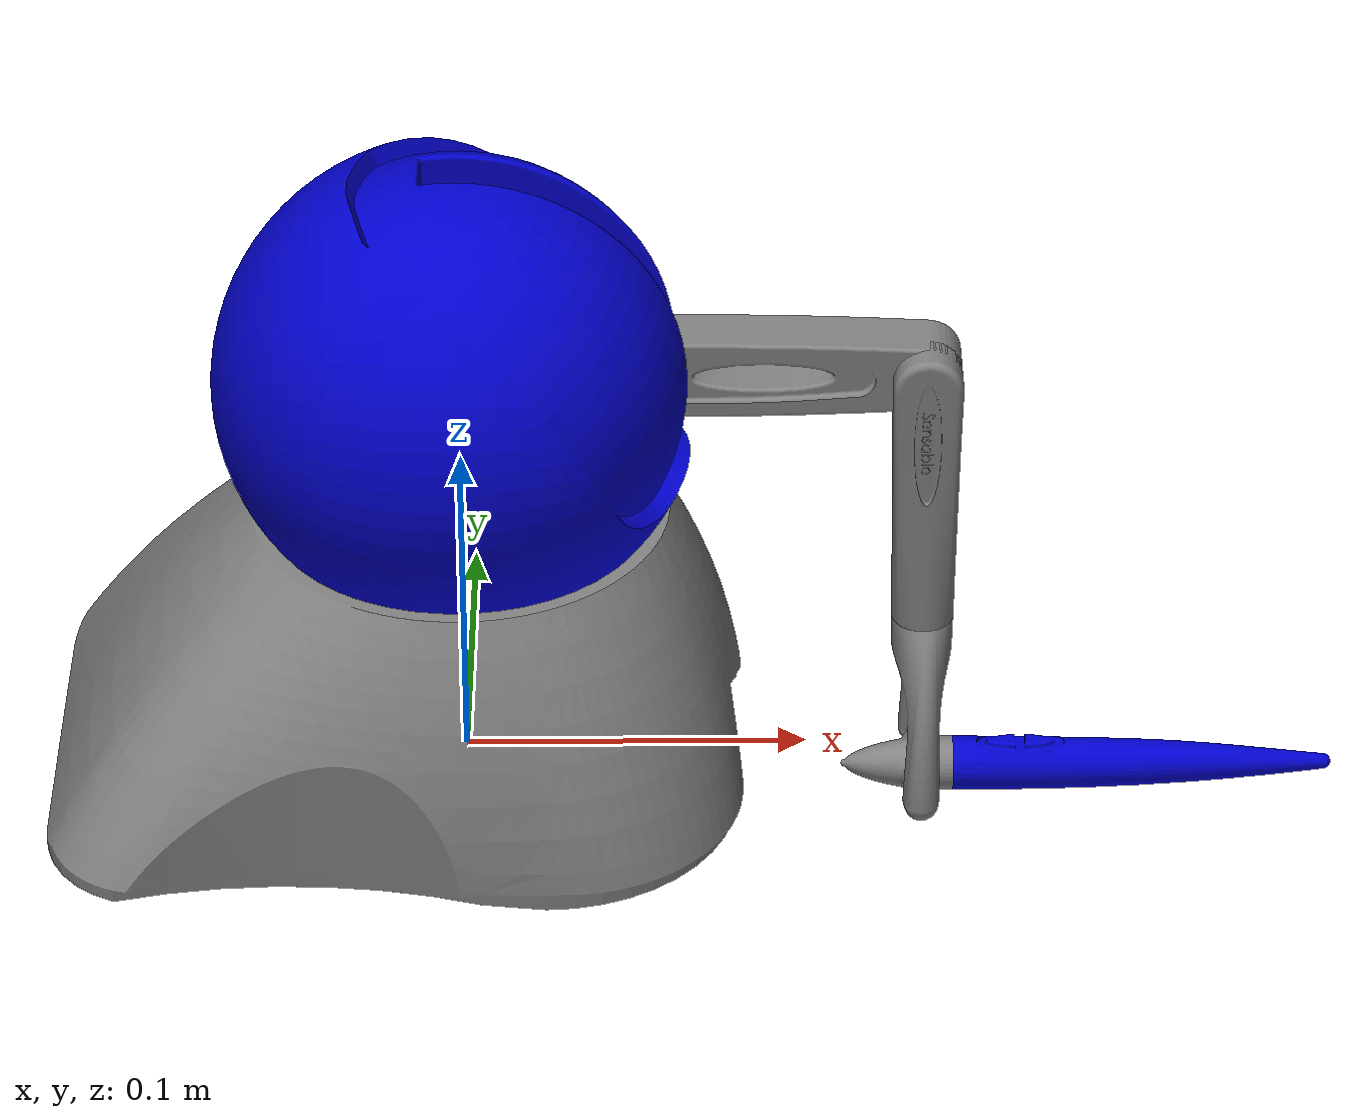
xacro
<?xml version="1.0"?>
<robot xmlns:xacro="http://www.ros.org/wiki/xacro" name="touch">
  <material name="metal_seamed">
    <color rgba="0.5 0.5 0.5 1.0"/>
  </material>
  <material name="blue">
    <color rgba="0.0 0.0 0.8 1.0"/>
  </material>
  <material name="white">
    <color rgba="1.0 1.0 1.0 1.0"/>
  </material>

  <link name="touch_base">
    <visual>
      <origin xyz="-0.02 0 0" rpy="0 0 -1.57079633"/>
      <geometry>
        <mesh filename="package://touch_description/meshes/base.stl"/>
      </geometry>
      <material name="metal_seamed"/>
    </visual>
  </link>

  <link name="torso">
    <visual>
      <origin xyz="0 0 0.036" rpy="-1.57079633 0 0"/>
      <geometry>
        <mesh filename="package://touch_description/meshes/torso.stl"/>
      </geometry>
      <material name="blue"/>
    </visual>
  </link>

  <link name="upper_arm">
    <visual>
      <origin xyz="0.0075 0 0" rpy="0 0 0"/>
      <geometry>
        <mesh filename="package://touch_description/meshes/upper_arm.stl"/>
      </geometry>
      <material name="metal_seamed"/>
    </visual>
  </link>

  <link name="lower_arm">
    <visual>
      <origin xyz="0 0 0" rpy="1.57079633 0 0"/>
      <geometry>
        <mesh filename="package://touch_description/meshes/lower_arm.stl"/>
      </geometry>
      <material name="metal_seamed"/>
    </visual>
  </link>

  <link name="wrist">
    <visual>
      <origin xyz="0 0 0" rpy="3.14159265 0 0"/>
      <geometry>
        <mesh filename="package://touch_description/meshes/wrist.stl"/>
      </geometry>
      <material name="metal_seamed"/>
    </visual>
  </link>

  <link name="tip">
    <visual>
      <origin xyz="0 0 0" rpy="-1.57079633 0 0"/>
      <geometry>
        <mesh filename="package://touch_description/meshes/tip.stl"/>
      </geometry>
      <material name="metal_seamed"/>
    </visual>
  </link>

  <link name="stylus">
    <visual>
      <origin xyz="0 0 0" rpy="1.57079633 1.57079633 0"/>
      <geometry>
        <mesh filename="package://touch_description/meshes/stylus.stl"/>
      </geometry>
      <material name="blue"/>
    </visual>
  </link>

  <joint name="waist" type="revolute">
    <parent link="touch_base"/>
    <child link="torso"/>
    <origin xyz="0 0 0.09" rpy="0 0 -1.57079633"/>
    <axis xyz="0 0 -1"/>
    <limit lower="-0.95" upper="0.95" velocity="100" effort="5"/>
  </joint>

  <joint name="shoulder" type="revolute">
    <parent link="torso"/>
    <child link="upper_arm"/>
    <origin xyz="-0.0075 0 0.035" rpy="0 0 0"/>
    <axis xyz="1 0 0"/>
    <limit lower="0" upper="1.75" velocity="100" effort="5"/>
  </joint>

  <joint name="elbow" type="revolute">
    <parent link="upper_arm"/>
    <child link="lower_arm"/>
    <origin xyz="0.0075 0.13335 0" rpy="-1.57079633 0 0"/>
    <axis xyz="1 0 0"/>
    <limit lower="-0.78" upper="1.18" velocity="100" effort="5"/>
  </joint>

  <joint name="yaw" type="revolute">
    <parent link="lower_arm"/>
    <child link="wrist"/>
    <origin xyz="0 0.08 0" rpy="0 0 0"/>
    <axis xyz="0 -1 0"/>
    <limit lower="-2.5" upper="2.5" velocity="100" effort="5"/>
  </joint>

  <joint name="pitch" type="revolute">
    <parent link="wrist"/>
    <child link="tip"/>
    <origin xyz="0 0.05335 0" rpy="1.57079633 0 0"/>
    <axis xyz="1 0 0"/>
    <limit lower="-1.42" upper="1.03" velocity="100" effort="5"/>
  </joint>

  <joint name="roll" type="revolute">
    <parent link="tip"/>
    <child link="stylus"/>
    <origin xyz="0 0.01 0" rpy="3.14159265 3.14159265 0"/>
    <axis xyz="0 1 0"/>
    <limit lower="-2.6" upper="2.6" velocity="100" effort="5"/>
  </joint>

  <link name="HIP"/>
  <link name="tcp"/>

  <joint name="HIP_joint" type="fixed">
    <parent link="stylus"/>
    <child link="HIP"/>
    <origin xyz="0 0.01 0" rpy="0 0 0"/>
  </joint>
  <joint name="tcp_joint" type="fixed">
    <parent link="HIP"/>
    <child link="tcp"/>
    <origin xyz="0 0.038 0" rpy="0 0 0"/>
  </joint>
</robot>
